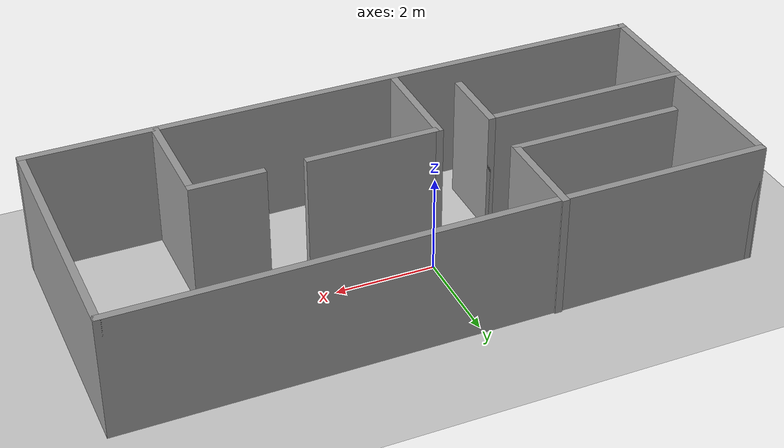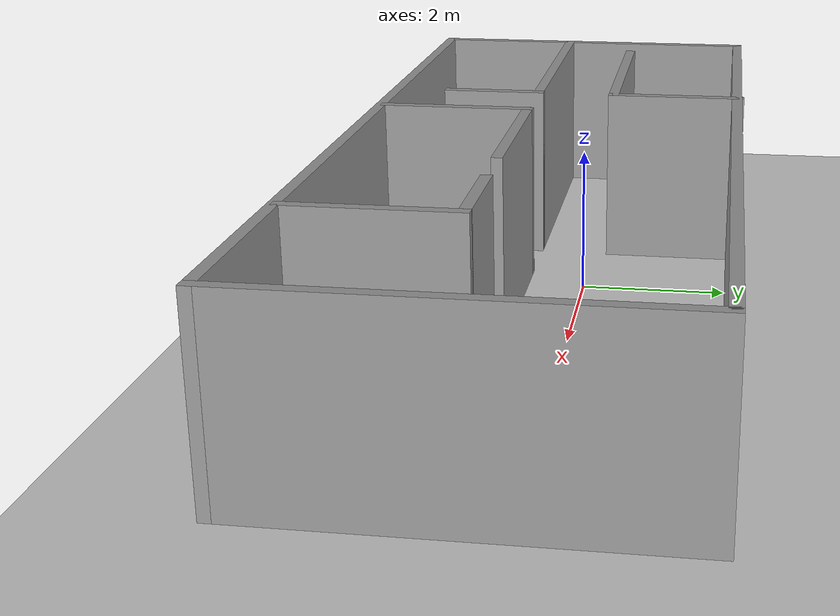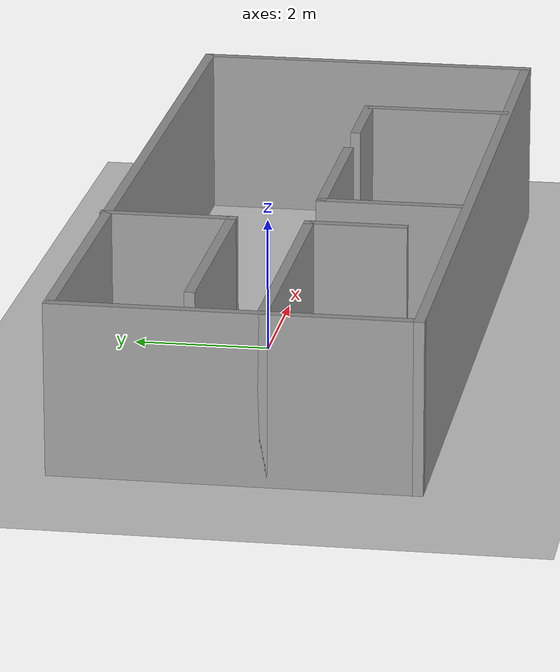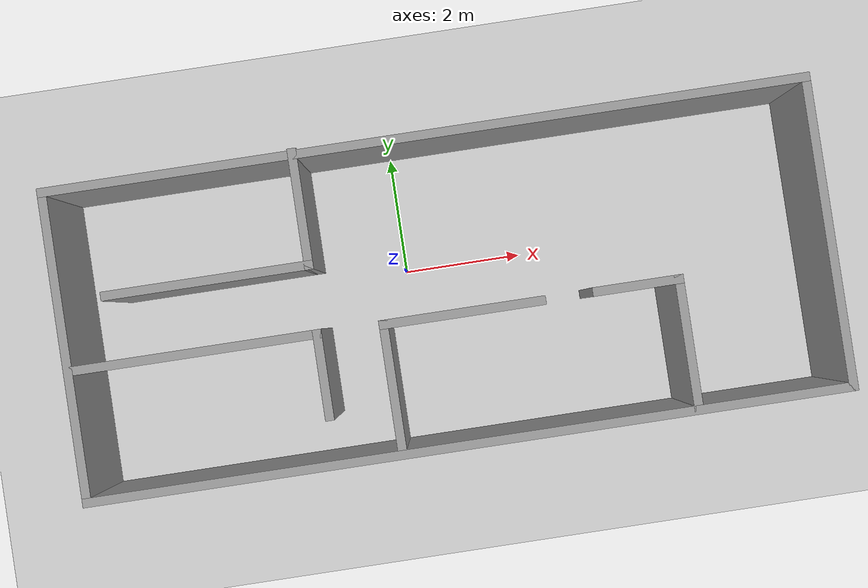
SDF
<sdf version="1.7">
 <world name="default">
  <plugin name="gazebo_ros_state" filename="libgazebo_ros_state.so">
   <ros><namespace>/</namespace></ros>
   <update_rate>50.0</update_rate>
  </plugin>
  <light name="sun" type="directional">
   <pose>0 0 10 0 -0 0</pose>
   <diffuse>0.8 0.8 0.8 1</diffuse>
   <specular>0.2 0.2 0.2 1</specular>
   <attenuation>
    <range>1000</range>
    <constant>0.9</constant>
    <linear>0.01</linear>
    <quadratic>0.001</quadratic>
   </attenuation>
   <direction>-0.5 0.1 -0.9</direction>
   <spot><inner_angle>0</inner_angle><outer_angle>0</outer_angle><falloff>0</falloff></spot>
  </light>
  <model name="ground_plane">
   <static>1</static>
   <link name="link">
    <collision name="collision">
     <geometry><plane><normal>0 0 1</normal><size>100 100</size></plane></geometry>
     <surface><friction><ode><mu>100</mu><mu2>50</mu2></ode></friction></surface>
    </collision>
    <visual name="visual">
     <cast_shadows>0</cast_shadows>
     <geometry><plane><normal>0 0 1</normal><size>100 100</size></plane></geometry>
     <material>
      <script><uri>file://media/materials/scripts/gazebo.material</uri><name>Gazebo/Grey</name></script>
     </material>
    </visual>
   </link>
  </model>
  <gravity>0 0 -9.8</gravity>
  <magnetic_field>6e-06 2.3e-05 -4.2e-05</magnetic_field>
  <atmosphere type="adiabatic"/>
  <physics type="ode">
   <max_step_size>0.001</max_step_size>
   <real_time_factor>1</real_time_factor>
   <real_time_update_rate>1000</real_time_update_rate>
  </physics>
  <scene><ambient>0.4 0.4 0.4 1</ambient><background>0.7 0.7 0.7 1</background><shadows>1</shadows></scene>
  <audio><device>default</device></audio>
  <spherical_coordinates>
   <surface_model>EARTH_WGS84</surface_model>
   <latitude_deg>0</latitude_deg>
   <longitude_deg>0</longitude_deg>
   <elevation>0</elevation>
   <heading_deg>0</heading_deg>
  </spherical_coordinates>
  <model name="room">
   <pose>0.645735 -0.176355 0 0 -0 0</pose>
   <link name="Wall_1">
    <collision name="Wall_1_Collision">
     <geometry><box><size>12.75 0.15 2.5</size></box></geometry>
     <pose>0 0 1.25 0 -0 0</pose>
    </collision>
    <visual name="Wall_1_Visual">
     <pose>0 0 1.25 0 -0 0</pose>
     <geometry><box><size>12.75 0.15 2.5</size></box></geometry>
     <material>
      <script><uri>file://media/materials/scripts/gazebo.material</uri><name>Gazebo/Grey</name></script>
      <ambient>1 1 1 1</ambient>
     </material>
     <meta><layer>0</layer></meta>
    </visual>
    <pose>0 2.2675 0 0 -0 0</pose>
   </link>
   <link name="Wall_10">
    <collision name="Wall_10_Collision">
     <geometry><box><size>1.5 0.15 2.5</size></box></geometry>
     <pose>0 0 1.25 0 -0 0</pose>
    </collision>
    <visual name="Wall_10_Visual">
     <pose>0 0 1.25 0 -0 0</pose>
     <geometry><box><size>1.5 0.15 2.5</size></box></geometry>
     <material>
      <script><uri>file://media/materials/scripts/gazebo.material</uri><name>Gazebo/Grey</name></script>
      <ambient>1 1 1 1</ambient>
     </material>
     <meta><layer>0</layer></meta>
    </visual>
    <pose>-2.2 -1.3575 0 0 -0 -1.5708</pose>
   </link>
   <link name="Wall_14">
    <collision name="Wall_14_Collision">
     <geometry><box><size>2.25 0.15 2.5</size></box></geometry>
     <pose>0 0 1.25 0 -0 0</pose>
    </collision>
    <visual name="Wall_14_Visual">
     <pose>0 0 1.25 0 -0 0</pose>
     <geometry><box><size>2.25 0.15 2.5</size></box></geometry>
     <material>
      <script><uri>file://media/materials/scripts/gazebo.material</uri><name>Gazebo/Grey</name></script>
      <ambient>1 1 1 1</ambient>
     </material>
     <meta><layer>0</layer></meta>
    </visual>
    <pose>-1.11 -1.7425 0 0 -0 1.5708</pose>
   </link>
   <link name="Wall_15">
    <collision name="Wall_15_Collision">
     <geometry><box><size>2.75 0.15 2.5</size></box></geometry>
     <pose>0 0 1.25 0 -0 0</pose>
    </collision>
    <visual name="Wall_15_Visual">
     <pose>0 0 1.25 0 -0 0</pose>
     <geometry><box><size>2.75 0.15 2.5</size></box></geometry>
     <material>
      <script><uri>file://media/materials/scripts/gazebo.material</uri><name>Gazebo/Grey</name></script>
      <ambient>1 1 1 1</ambient>
     </material>
     <meta><layer>0</layer></meta>
    </visual>
    <pose>0.19 -0.6925 0 0 -0 0</pose>
   </link>
   <link name="Wall_17">
    <collision name="Wall_17_Collision">
     <geometry><box><size>1.5 0.15 2.5</size></box></geometry>
     <pose>0 0 1.25 0 -0 0</pose>
    </collision>
    <visual name="Wall_17_Visual">
     <pose>0 0 1.25 0 -0 0</pose>
     <geometry><box><size>1.5 0.15 2.5</size></box></geometry>
     <material>
      <script><uri>file://media/materials/scripts/gazebo.material</uri><name>Gazebo/Grey</name></script>
      <ambient>1 1 1 1</ambient>
     </material>
     <meta><layer>0</layer></meta>
    </visual>
    <pose>3.085 -0.6825 0 0 -0 0</pose>
   </link>
   <link name="Wall_18">
    <collision name="Wall_18_Collision">
     <geometry><box><size>2.25 0.15 2.5</size></box></geometry>
     <pose>0 0 1.25 0 -0 0</pose>
    </collision>
    <visual name="Wall_18_Visual">
     <pose>0 0 1.25 0 -0 0</pose>
     <geometry><box><size>2.25 0.15 2.5</size></box></geometry>
     <material>
      <script><uri>file://media/materials/scripts/gazebo.material</uri><name>Gazebo/Grey</name></script>
      <ambient>1 1 1 1</ambient>
     </material>
     <meta><layer>0</layer></meta>
    </visual>
    <pose>3.76 -1.7325 0 0 -0 -1.5708</pose>
   </link>
   <link name="Wall_2">
    <collision name="Wall_2_Collision">
     <geometry><box><size>5.25 0.15 2.5</size></box></geometry>
     <pose>0 0 1.25 0 -0 0</pose>
    </collision>
    <visual name="Wall_2_Visual">
     <pose>0 0 1.25 0 -0 0</pose>
     <geometry><box><size>5.25 0.15 2.5</size></box></geometry>
     <material>
      <script><uri>file://media/materials/scripts/gazebo.material</uri><name>Gazebo/Grey</name></script>
      <ambient>1 1 1 1</ambient>
     </material>
     <meta><layer>0</layer></meta>
    </visual>
    <pose>6.3 -0.2825 0 0 -0 -1.5708</pose>
   </link>
   <link name="Wall_3">
    <collision name="Wall_3_Collision">
     <geometry><box><size>12.75 0.15 2.5</size></box></geometry>
     <pose>0 0 1.25 0 -0 0</pose>
    </collision>
    <visual name="Wall_3_Visual">
     <pose>0 0 1.25 0 -0 0</pose>
     <geometry><box><size>12.75 0.15 2.5</size></box></geometry>
     <material>
      <script><uri>file://media/materials/scripts/gazebo.material</uri><name>Gazebo/Grey</name></script>
      <ambient>1 1 1 1</ambient>
     </material>
     <meta><layer>0</layer></meta>
    </visual>
    <pose>0 -2.8325 0 0 -0 3.14159</pose>
   </link>
   <link name="Wall_4">
    <collision name="Wall_4_Collision">
     <geometry><box><size>5.25 0.15 2.5</size></box></geometry>
     <pose>0 0 1.25 0 -0 0</pose>
    </collision>
    <visual name="Wall_4_Visual">
     <pose>0 0 1.25 0 -0 0</pose>
     <geometry><box><size>5.25 0.15 2.5</size></box></geometry>
     <material>
      <script><uri>file://media/materials/scripts/gazebo.material</uri><name>Gazebo/Grey</name></script>
      <ambient>1 1 1 1</ambient>
     </material>
     <meta><layer>0</layer></meta>
    </visual>
    <pose>-6.3 -0.2825 0 0 -0 1.5708</pose>
   </link>
   <link name="Wall_6">
    <collision name="Wall_6_Collision">
     <geometry><box><size>3.5 0.15 2.5</size></box></geometry>
     <pose>0 0 1.25 0 -0 0</pose>
    </collision>
    <visual name="Wall_6_Visual">
     <pose>0 0 1.25 0 -0 0</pose>
     <geometry><box><size>3.5 0.15 2.5</size></box></geometry>
     <material>
      <script><uri>file://media/materials/scripts/gazebo.material</uri><name>Gazebo/Grey</name></script>
      <ambient>1 1 1 1</ambient>
     </material>
     <meta><layer>0</layer></meta>
    </visual>
    <pose>-3.845 0.4475 0 0 -0 0</pose>
   </link>
   <link name="Wall_7">
    <collision name="Wall_7_Collision">
     <geometry><box><size>2 0.15 2.5</size></box></geometry>
     <pose>0 0 1.25 0 -0 0</pose>
    </collision>
    <visual name="Wall_7_Visual">
     <pose>0 0 1.25 0 -0 0</pose>
     <geometry><box><size>2 0.15 2.5</size></box></geometry>
     <material>
      <script><uri>file://media/materials/scripts/gazebo.material</uri><name>Gazebo/Grey</name></script>
      <ambient>1 1 1 1</ambient>
     </material>
     <meta><layer>0</layer></meta>
    </visual>
    <pose>-2.17 1.3725 0 0 -0 1.5708</pose>
   </link>
   <link name="Wall_9">
    <collision name="Wall_9_Collision">
     <geometry><box><size>4.25 0.15 2.5</size></box></geometry>
     <pose>0 0 1.25 0 -0 0</pose>
    </collision>
    <visual name="Wall_9_Visual">
     <pose>0 0 1.25 0 -0 0</pose>
     <geometry><box><size>4.25 0.15 2.5</size></box></geometry>
     <material>
      <script><uri>file://media/materials/scripts/gazebo.material</uri><name>Gazebo/Grey</name></script>
      <ambient>1 1 1 1</ambient>
     </material>
     <meta><layer>0</layer></meta>
    </visual>
    <pose>-4.25 -0.6825 0 0 -0 0</pose>
   </link>
   <static>1</static>
  </model>
 </world>
</sdf>
